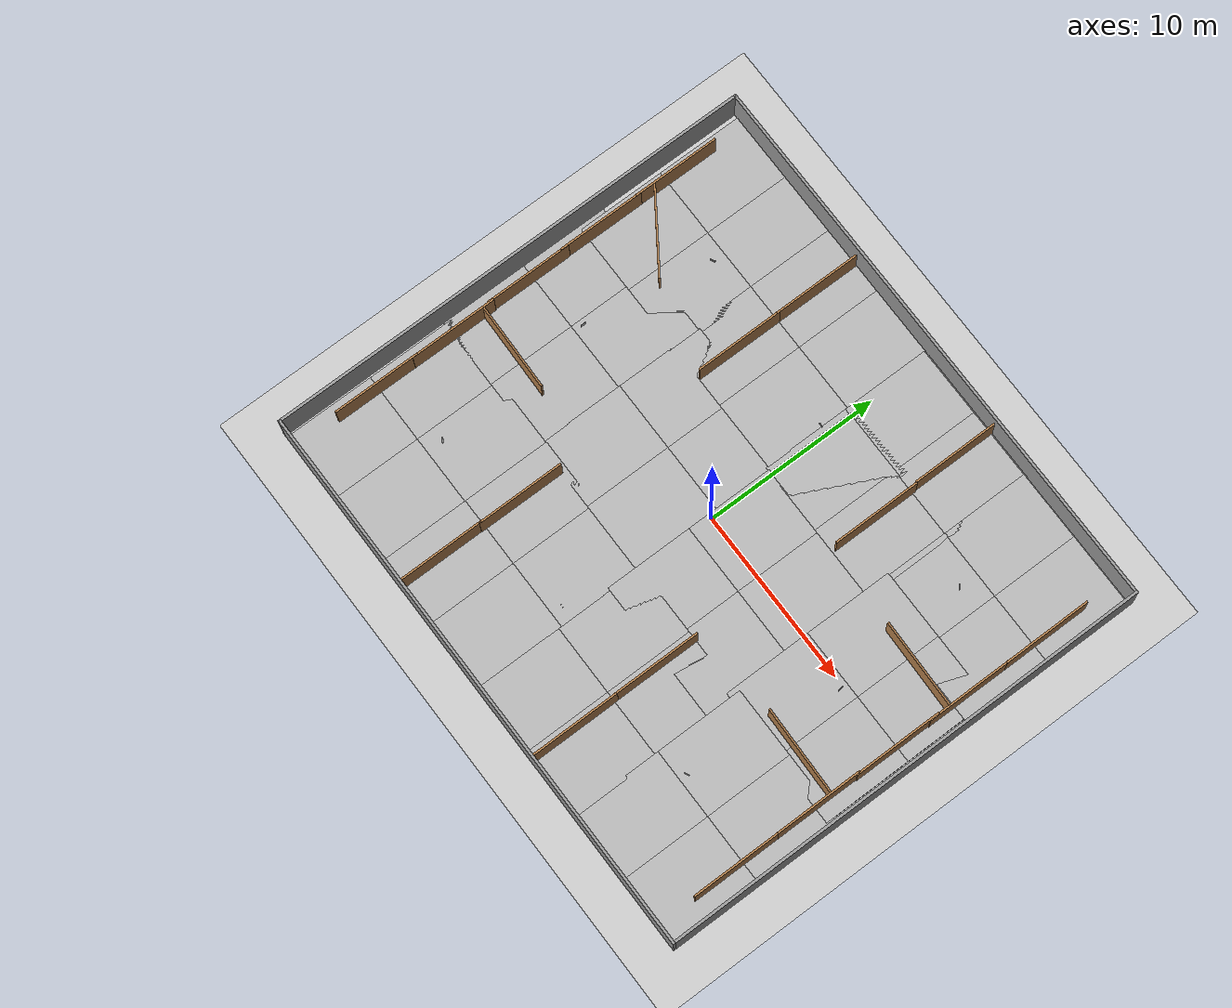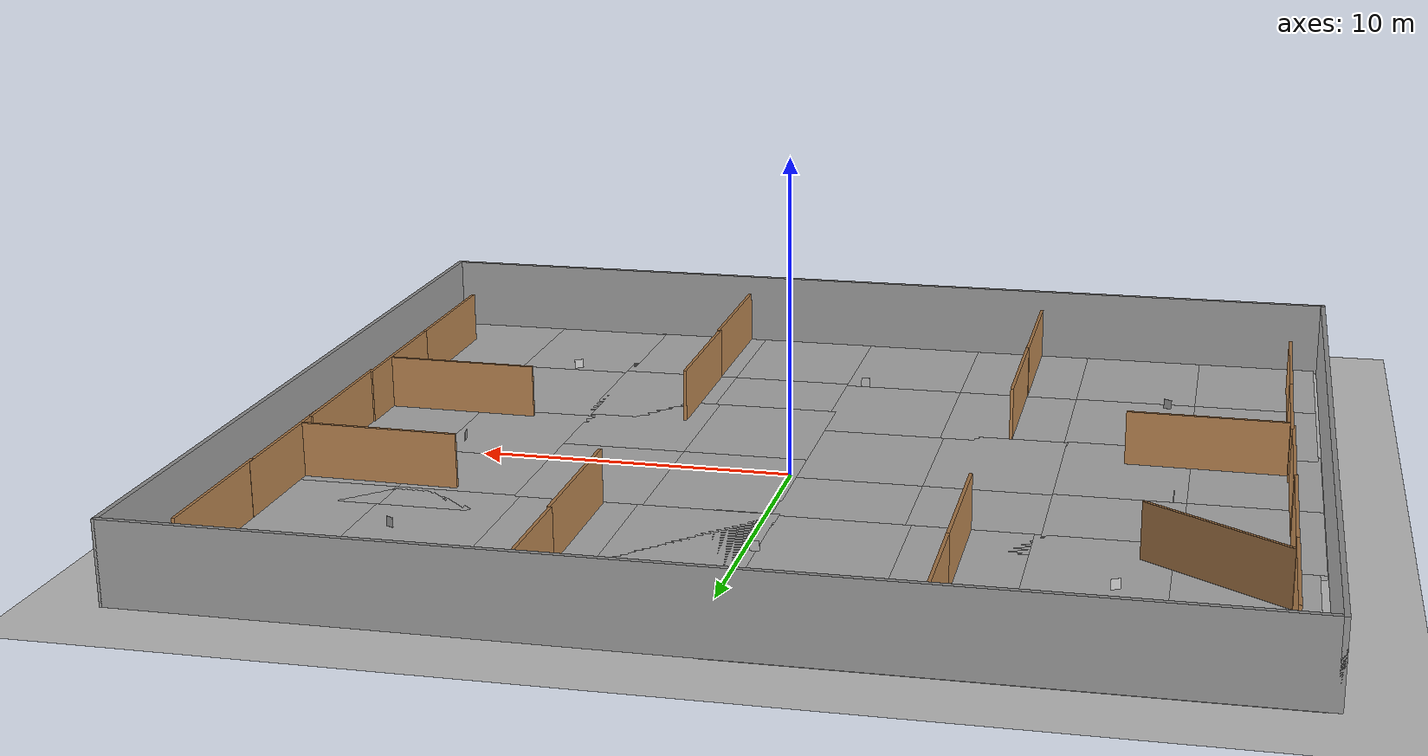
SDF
<sdf version="1.7">
 <world name="obstacles_world">
  <light name="sun" type="directional">
   <pose>0 0 10 0 -0 0</pose>
   <diffuse>0.8 0.8 0.8 1</diffuse>
   <specular>0.2 0.2 0.2 1</specular>
   <attenuation>
    <range>1000</range>
    <constant>0.9</constant>
    <linear>0.01</linear>
    <quadratic>0.001</quadratic>
   </attenuation>
   <direction>-0.5 0.1 -0.9</direction>
   <spot><inner_angle>0</inner_angle><outer_angle>0</outer_angle><falloff>0</falloff></spot>
  </light>
  <model name="ground_plane">
   <static>1</static>
   <link name="link">
    <collision name="collision">
     <geometry><plane><normal>0 0 1</normal><size>100 100</size></plane></geometry>
     <surface>
      <contact><collide_bitmask>65535</collide_bitmask></contact>
      <friction><ode><mu>100</mu><mu2>50</mu2></ode></friction>
     </surface>
    </collision>
    <visual name="visual">
     <cast_shadows>0</cast_shadows>
     <geometry><plane><normal>0 0 1</normal><size>100 100</size></plane></geometry>
     <material>
      <script><uri>file://media/materials/scripts/gazebo.material</uri><name>Gazebo/Grey</name></script>
     </material>
    </visual>
   </link>
  </model>
  <model name="obstacles">
   <pose>-0.2136 -0.241046 0 0 -0 0</pose>
   <link name="Wall_0">
    <collision name="Wall_0_Collision">
     <geometry><box><size>28.25 0.15 2.5</size></box></geometry>
     <pose>0 0 1.25 0 -0 0</pose>
    </collision>
    <visual name="Wall_0_Visual">
     <pose>0 0 1.25 0 -0 0</pose>
     <geometry><box><size>28.25 0.15 2.5</size></box></geometry>
     <material>
      <script><uri>file://media/materials/scripts/gazebo.material</uri><name>Gazebo/Grey</name></script>
      <ambient>1 1 1 1</ambient>
     </material>
     <meta><layer>0</layer></meta>
    </visual>
    <pose>-16.05 0 0 0 -0 1.5708</pose>
   </link>
   <link name="Wall_1">
    <collision name="Wall_1_Collision">
     <geometry><box><size>32.25 0.15 2.5</size></box></geometry>
     <pose>0 0 1.25 0 -0 0</pose>
    </collision>
    <visual name="Wall_1_Visual">
     <pose>0 0 1.25 0 -0 0</pose>
     <geometry><box><size>32.25 0.15 2.5</size></box></geometry>
     <material>
      <script><uri>file://media/materials/scripts/gazebo.material</uri><name>Gazebo/Grey</name></script>
      <ambient>1 1 1 1</ambient>
     </material>
     <meta><layer>0</layer></meta>
    </visual>
    <pose>1e-06 14.05 0 0 -0 0</pose>
   </link>
   <link name="Wall_4">
    <collision name="Wall_4_Collision">
     <geometry><box><size>28.25 0.15 2.5</size></box></geometry>
     <pose>0 0 1.25 0 -0 0</pose>
    </collision>
    <visual name="Wall_4_Visual">
     <pose>0 0 1.25 0 -0 0</pose>
     <geometry><box><size>28.25 0.15 2.5</size></box></geometry>
     <material>
      <script><uri>file://media/materials/scripts/gazebo.material</uri><name>Gazebo/Grey</name></script>
      <ambient>1 1 1 1</ambient>
     </material>
     <meta><layer>0</layer></meta>
    </visual>
    <pose>16.05 0 0 0 -0 -1.5708</pose>
   </link>
   <link name="Wall_5">
    <collision name="Wall_5_Collision">
     <geometry><box><size>32.25 0.15 2.5</size></box></geometry>
     <pose>0 0 1.25 0 -0 0</pose>
    </collision>
    <visual name="Wall_5_Visual">
     <pose>0 0 1.25 0 -0 0</pose>
     <geometry><box><size>32.25 0.15 2.5</size></box></geometry>
     <material>
      <script><uri>file://media/materials/scripts/gazebo.material</uri><name>Gazebo/Grey</name></script>
      <ambient>1 1 1 1</ambient>
     </material>
     <meta><layer>0</layer></meta>
    </visual>
    <pose>1e-06 -14.05 0 0 -0 3.14159</pose>
   </link>
   <static>1</static>
  </model>
  <gravity>0 0 -9.8</gravity>
  <magnetic_field>6e-06 2.3e-05 -4.2e-05</magnetic_field>
  <atmosphere type="adiabatic"/>
  <physics type="ode">
   <max_step_size>0.001</max_step_size>
   <real_time_factor>1</real_time_factor>
   <real_time_update_rate>1000</real_time_update_rate>
  </physics>
  <scene><ambient>0.4 0.4 0.4 1</ambient><background>0.7 0.7 0.7 1</background><shadows>1</shadows></scene>
  <audio><device>default</device></audio>
  <spherical_coordinates>
   <surface_model>EARTH_WGS84</surface_model>
   <latitude_deg>0</latitude_deg>
   <longitude_deg>0</longitude_deg>
   <elevation>0</elevation>
   <heading_deg>0</heading_deg>
  </spherical_coordinates>
  <model name="mud_box">
   <static>1</static>
   <link name="link">
    <collision name="collision"><geometry><box><size>8 10 0.2</size></box></geometry></collision>
    <visual name="visual_1">
     <pose>-2 2.5 0 0 -0 0</pose>
     <cast_shadows>0</cast_shadows>
     <geometry><box><size>4 5 0.2</size></box></geometry>
     <material>
      <script>
       <uri>https://fuel.ignitionrobotics.org/1.0/openrobotics/models/mud box/3/files/materials/scripts</uri>
       <uri>https://fuel.ignitionrobotics.org/1.0/openrobotics/models/mud box/3/files/materials/textures</uri>
       <name>vrc/mud</name>
      </script>
     </material>
    </visual>
    <visual name="visual_2">
     <pose>2 2.5 0 0 -0 0</pose>
     <cast_shadows>0</cast_shadows>
     <geometry><box><size>4 5 0.2</size></box></geometry>
     <material>
      <script>
       <uri>https://fuel.ignitionrobotics.org/1.0/openrobotics/models/mud box/3/files/materials/scripts</uri>
       <uri>https://fuel.ignitionrobotics.org/1.0/openrobotics/models/mud box/3/files/materials/textures</uri>
       <name>vrc/mud</name>
      </script>
     </material>
    </visual>
    <visual name="visual_3">
     <pose>2 -2.5 0 0 -0 0</pose>
     <cast_shadows>0</cast_shadows>
     <geometry><box><size>4 5 0.2</size></box></geometry>
     <material>
      <script>
       <uri>https://fuel.ignitionrobotics.org/1.0/openrobotics/models/mud box/3/files/materials/scripts</uri>
       <uri>https://fuel.ignitionrobotics.org/1.0/openrobotics/models/mud box/3/files/materials/textures</uri>
       <name>vrc/mud</name>
      </script>
     </material>
    </visual>
    <visual name="visual_4">
     <pose>-2 -2.5 0 0 -0 0</pose>
     <cast_shadows>0</cast_shadows>
     <geometry><box><size>4 5 0.2</size></box></geometry>
     <material>
      <script>
       <uri>https://fuel.ignitionrobotics.org/1.0/openrobotics/models/mud box/3/files/materials/scripts</uri>
       <uri>https://fuel.ignitionrobotics.org/1.0/openrobotics/models/mud box/3/files/materials/textures</uri>
       <name>vrc/mud</name>
      </script>
     </material>
    </visual>
   </link>
   <pose>-4.3861 8.81564 0 0 -0 0</pose>
  </model>
  <model name="mud_box_clone">
   <static>1</static>
   <link name="link">
    <collision name="collision"><geometry><box><size>8 10 0.2</size></box></geometry></collision>
    <visual name="visual_1">
     <pose>-2 2.5 0 0 -0 0</pose>
     <cast_shadows>0</cast_shadows>
     <geometry><box><size>4 5 0.2</size></box></geometry>
     <material>
      <script>
       <uri>https://fuel.ignitionrobotics.org/1.0/openrobotics/models/mud box/3/files/materials/scripts</uri>
       <uri>https://fuel.ignitionrobotics.org/1.0/openrobotics/models/mud box/3/files/materials/textures</uri>
       <name>vrc/mud</name>
      </script>
     </material>
    </visual>
    <visual name="visual_2">
     <pose>2 2.5 0 0 -0 0</pose>
     <cast_shadows>0</cast_shadows>
     <geometry><box><size>4 5 0.2</size></box></geometry>
     <material>
      <script>
       <uri>https://fuel.ignitionrobotics.org/1.0/openrobotics/models/mud box/3/files/materials/scripts</uri>
       <uri>https://fuel.ignitionrobotics.org/1.0/openrobotics/models/mud box/3/files/materials/textures</uri>
       <name>vrc/mud</name>
      </script>
     </material>
    </visual>
    <visual name="visual_3">
     <pose>2 -2.5 0 0 -0 0</pose>
     <cast_shadows>0</cast_shadows>
     <geometry><box><size>4 5 0.2</size></box></geometry>
     <material>
      <script>
       <uri>https://fuel.ignitionrobotics.org/1.0/openrobotics/models/mud box/3/files/materials/scripts</uri>
       <uri>https://fuel.ignitionrobotics.org/1.0/openrobotics/models/mud box/3/files/materials/textures</uri>
       <name>vrc/mud</name>
      </script>
     </material>
    </visual>
    <visual name="visual_4">
     <pose>-2 -2.5 0 0 -0 0</pose>
     <cast_shadows>0</cast_shadows>
     <geometry><box><size>4 5 0.2</size></box></geometry>
     <material>
      <script>
       <uri>https://fuel.ignitionrobotics.org/1.0/openrobotics/models/mud box/3/files/materials/scripts</uri>
       <uri>https://fuel.ignitionrobotics.org/1.0/openrobotics/models/mud box/3/files/materials/textures</uri>
       <name>vrc/mud</name>
      </script>
     </material>
    </visual>
   </link>
   <pose>-11.9609 8.81729 0 0 -0 0</pose>
  </model>
  <model name="fence">
   <static>1</static>
   <link name="link">
    <pose>0 0 0.915 0 -0 0</pose>
    <collision name="collision"><geometry><box><size>0.1 5 1.83</size></box></geometry></collision>
    <visual name="visual">
     <cast_shadows>0</cast_shadows>
     <geometry><box><size>0.1 5 1.83</size></box></geometry>
     <material>
      <script>
       <uri>https://fuel.ignitionrobotics.org/1.0/athackst/models/fence/2/files/materials/scripts</uri>
       <uri>https://fuel.ignitionrobotics.org/1.0/athackst/models/fence/2/files/materials/textures</uri>
       <name>Fence/WoodBoarding</name>
      </script>
     </material>
    </visual>
   </link>
   <pose>14.6045 -9.62209 0 0 -0 0</pose>
  </model>
  <model name="fence_clone">
   <static>1</static>
   <link name="link">
    <pose>0 0 0.915 0 -0 0</pose>
    <collision name="collision"><geometry><box><size>0.1 5 1.83</size></box></geometry></collision>
    <visual name="visual">
     <cast_shadows>0</cast_shadows>
     <geometry><box><size>0.1 5 1.83</size></box></geometry>
     <material>
      <script>
       <uri>https://fuel.ignitionrobotics.org/1.0/athackst/models/fence/2/files/materials/scripts</uri>
       <uri>https://fuel.ignitionrobotics.org/1.0/athackst/models/fence/2/files/materials/textures</uri>
       <name>Fence/WoodBoarding</name>
      </script>
     </material>
    </visual>
   </link>
   <pose>14.6018 -4.62397 0 0 -0 0</pose>
  </model>
  <model name="fence_clone_0">
   <static>1</static>
   <link name="link">
    <pose>0 0 0.915 0 -0 0</pose>
    <collision name="collision"><geometry><box><size>0.1 5 1.83</size></box></geometry></collision>
    <visual name="visual">
     <cast_shadows>0</cast_shadows>
     <geometry><box><size>0.1 5 1.83</size></box></geometry>
     <material>
      <script>
       <uri>https://fuel.ignitionrobotics.org/1.0/athackst/models/fence/2/files/materials/scripts</uri>
       <uri>https://fuel.ignitionrobotics.org/1.0/athackst/models/fence/2/files/materials/textures</uri>
       <name>Fence/WoodBoarding</name>
      </script>
     </material>
    </visual>
   </link>
   <pose>14.6508 0.141069 0 0 -0 0</pose>
  </model>
  <model name="fence_clone_1">
   <static>1</static>
   <link name="link">
    <pose>0 0 0.915 0 -0 0</pose>
    <collision name="collision"><geometry><box><size>0.1 5 1.83</size></box></geometry></collision>
    <visual name="visual">
     <cast_shadows>0</cast_shadows>
     <geometry><box><size>0.1 5 1.83</size></box></geometry>
     <material>
      <script>
       <uri>https://fuel.ignitionrobotics.org/1.0/athackst/models/fence/2/files/materials/scripts</uri>
       <uri>https://fuel.ignitionrobotics.org/1.0/athackst/models/fence/2/files/materials/textures</uri>
       <name>Fence/WoodBoarding</name>
      </script>
     </material>
    </visual>
   </link>
   <pose>14.6921 4.56473 -0.015225 0 -0 0</pose>
  </model>
  <model name="fence_clone_2">
   <static>1</static>
   <link name="link">
    <pose>0 0 0.915 0 -0 0</pose>
    <collision name="collision"><geometry><box><size>0.1 5 1.83</size></box></geometry></collision>
    <visual name="visual">
     <cast_shadows>0</cast_shadows>
     <geometry><box><size>0.1 5 1.83</size></box></geometry>
     <material>
      <script>
       <uri>https://fuel.ignitionrobotics.org/1.0/athackst/models/fence/2/files/materials/scripts</uri>
       <uri>https://fuel.ignitionrobotics.org/1.0/athackst/models/fence/2/files/materials/textures</uri>
       <name>Fence/WoodBoarding</name>
      </script>
     </material>
    </visual>
   </link>
   <pose>14.6978 9.2716 0 0 -0 0</pose>
  </model>
  <model name="fence_clone_3">
   <static>1</static>
   <link name="link">
    <pose>0 0 0.915 0 -0 0</pose>
    <collision name="collision"><geometry><box><size>0.1 5 1.83</size></box></geometry></collision>
    <visual name="visual">
     <cast_shadows>0</cast_shadows>
     <geometry><box><size>0.1 5 1.83</size></box></geometry>
     <material>
      <script>
       <uri>https://fuel.ignitionrobotics.org/1.0/athackst/models/fence/2/files/materials/scripts</uri>
       <uri>https://fuel.ignitionrobotics.org/1.0/athackst/models/fence/2/files/materials/textures</uri>
       <name>Fence/WoodBoarding</name>
      </script>
     </material>
    </visual>
   </link>
   <pose>-15.1685 -9.30903 0 0 -0 0</pose>
  </model>
  <model name="fence_clone_4">
   <static>1</static>
   <link name="link">
    <pose>0 0 0.915 0 -0 0</pose>
    <collision name="collision"><geometry><box><size>0.1 5 1.83</size></box></geometry></collision>
    <visual name="visual">
     <cast_shadows>0</cast_shadows>
     <geometry><box><size>0.1 5 1.83</size></box></geometry>
     <material>
      <script>
       <uri>https://fuel.ignitionrobotics.org/1.0/athackst/models/fence/2/files/materials/scripts</uri>
       <uri>https://fuel.ignitionrobotics.org/1.0/athackst/models/fence/2/files/materials/textures</uri>
       <name>Fence/WoodBoarding</name>
      </script>
     </material>
    </visual>
   </link>
   <pose>-15.1601 -4.63464 0 0 -0 0</pose>
  </model>
  <model name="fence_clone_5">
   <static>1</static>
   <link name="link">
    <pose>0 0 0.915 0 -0 0</pose>
    <collision name="collision"><geometry><box><size>0.1 5 1.83</size></box></geometry></collision>
    <visual name="visual">
     <cast_shadows>0</cast_shadows>
     <geometry><box><size>0.1 5 1.83</size></box></geometry>
     <material>
      <script>
       <uri>https://fuel.ignitionrobotics.org/1.0/athackst/models/fence/2/files/materials/scripts</uri>
       <uri>https://fuel.ignitionrobotics.org/1.0/athackst/models/fence/2/files/materials/textures</uri>
       <name>Fence/WoodBoarding</name>
      </script>
     </material>
    </visual>
   </link>
   <pose>-15.2084 0.02719 -0.008637 0 -0 0</pose>
  </model>
  <model name="fence_clone_6">
   <static>1</static>
   <link name="link">
    <pose>0 0 0.915 0 -0 0</pose>
    <collision name="collision"><geometry><box><size>0.1 5 1.83</size></box></geometry></collision>
    <visual name="visual">
     <cast_shadows>0</cast_shadows>
     <geometry><box><size>0.1 5 1.83</size></box></geometry>
     <material>
      <script>
       <uri>https://fuel.ignitionrobotics.org/1.0/athackst/models/fence/2/files/materials/scripts</uri>
       <uri>https://fuel.ignitionrobotics.org/1.0/athackst/models/fence/2/files/materials/textures</uri>
       <name>Fence/WoodBoarding</name>
      </script>
     </material>
    </visual>
   </link>
   <pose>-15.233 4.57812 0 0 -0 0</pose>
  </model>
  <model name="fence_clone_7">
   <static>1</static>
   <link name="link">
    <pose>0 0 0.915 0 -0 0</pose>
    <collision name="collision"><geometry><box><size>0.1 5 1.83</size></box></geometry></collision>
    <visual name="visual">
     <cast_shadows>0</cast_shadows>
     <geometry><box><size>0.1 5 1.83</size></box></geometry>
     <material>
      <script>
       <uri>https://fuel.ignitionrobotics.org/1.0/athackst/models/fence/2/files/materials/scripts</uri>
       <uri>https://fuel.ignitionrobotics.org/1.0/athackst/models/fence/2/files/materials/textures</uri>
       <name>Fence/WoodBoarding</name>
      </script>
     </material>
    </visual>
   </link>
   <pose>-15.2433 9.27953 0 0 -0 0</pose>
  </model>
  <model name="fence_clone_5_clone">
   <static>1</static>
   <link name="link">
    <pose>0 0 0.915 0 -0 0</pose>
    <collision name="collision"><geometry><box><size>0.1 5 1.83</size></box></geometry></collision>
    <visual name="visual">
     <cast_shadows>0</cast_shadows>
     <geometry><box><size>0.1 5 1.83</size></box></geometry>
     <material>
      <script>
       <uri>https://fuel.ignitionrobotics.org/1.0/athackst/models/fence/2/files/materials/scripts</uri>
       <uri>https://fuel.ignitionrobotics.org/1.0/athackst/models/fence/2/files/materials/textures</uri>
       <name>Fence/WoodBoarding</name>
      </script>
     </material>
    </visual>
   </link>
   <pose>-6.36057 -11.7862 -0.008637 0 -0 0</pose>
  </model>
  <model name="fence_clone_5_clone_0">
   <static>1</static>
   <link name="link">
    <pose>0 0 0.915 0 -0 0</pose>
    <collision name="collision"><geometry><box><size>0.1 5 1.83</size></box></geometry></collision>
    <visual name="visual">
     <cast_shadows>0</cast_shadows>
     <geometry><box><size>0.1 5 1.83</size></box></geometry>
     <material>
      <script>
       <uri>https://fuel.ignitionrobotics.org/1.0/athackst/models/fence/2/files/materials/scripts</uri>
       <uri>https://fuel.ignitionrobotics.org/1.0/athackst/models/fence/2/files/materials/textures</uri>
       <name>Fence/WoodBoarding</name>
      </script>
     </material>
    </visual>
   </link>
   <pose>4.49491 -11.6794 0.028206 0 -0 0</pose>
  </model>
  <model name="fence_clone_5_clone_1">
   <static>1</static>
   <link name="link">
    <pose>0 0 0.915 0 -0 0</pose>
    <collision name="collision"><geometry><box><size>0.1 5 1.83</size></box></geometry></collision>
    <visual name="visual">
     <cast_shadows>0</cast_shadows>
     <geometry><box><size>0.1 5 1.83</size></box></geometry>
     <material>
      <script>
       <uri>https://fuel.ignitionrobotics.org/1.0/athackst/models/fence/2/files/materials/scripts</uri>
       <uri>https://fuel.ignitionrobotics.org/1.0/athackst/models/fence/2/files/materials/textures</uri>
       <name>Fence/WoodBoarding</name>
      </script>
     </material>
    </visual>
   </link>
   <pose>4.92743 11.3344 -0.008637 0 -0 0</pose>
  </model>
  <model name="fence_clone_5_clone_2">
   <static>1</static>
   <link name="link">
    <pose>0 0 0.915 0 -0 0</pose>
    <collision name="collision"><geometry><box><size>0.1 5 1.83</size></box></geometry></collision>
    <visual name="visual">
     <cast_shadows>0</cast_shadows>
     <geometry><box><size>0.1 5 1.83</size></box></geometry>
     <material>
      <script>
       <uri>https://fuel.ignitionrobotics.org/1.0/athackst/models/fence/2/files/materials/scripts</uri>
       <uri>https://fuel.ignitionrobotics.org/1.0/athackst/models/fence/2/files/materials/textures</uri>
       <name>Fence/WoodBoarding</name>
      </script>
     </material>
    </visual>
   </link>
   <pose>-6.08248 11.1721 0.001351 0 -0 0</pose>
  </model>
  <model name="fence_clone_5_clone_3">
   <static>1</static>
   <link name="link">
    <pose>0 0 0.915 0 -0 0</pose>
    <collision name="collision"><geometry><box><size>0.1 5 1.83</size></box></geometry></collision>
    <visual name="visual">
     <cast_shadows>0</cast_shadows>
     <geometry><box><size>0.1 5 1.83</size></box></geometry>
     <material>
      <script>
       <uri>https://fuel.ignitionrobotics.org/1.0/athackst/models/fence/2/files/materials/scripts</uri>
       <uri>https://fuel.ignitionrobotics.org/1.0/athackst/models/fence/2/files/materials/textures</uri>
       <name>Fence/WoodBoarding</name>
      </script>
     </material>
    </visual>
   </link>
   <pose>-13.1332 6.51433 -0.008637 0 0 -2.16672</pose>
  </model>
  <model name="fence_clone_5_clone_4">
   <static>1</static>
   <link name="link">
    <pose>0 0 0.915 0 -0 0</pose>
    <collision name="collision"><geometry><box><size>0.1 5 1.83</size></box></geometry></collision>
    <visual name="visual">
     <cast_shadows>0</cast_shadows>
     <geometry><box><size>0.1 5 1.83</size></box></geometry>
     <material>
      <script>
       <uri>https://fuel.ignitionrobotics.org/1.0/athackst/models/fence/2/files/materials/scripts</uri>
       <uri>https://fuel.ignitionrobotics.org/1.0/athackst/models/fence/2/files/materials/textures</uri>
       <name>Fence/WoodBoarding</name>
      </script>
     </material>
    </visual>
   </link>
   <pose>-6.07978 6.32089 -0.008637 0 -0 0</pose>
  </model>
  <model name="fence_clone_5_clone_5">
   <static>1</static>
   <link name="link">
    <pose>0 0 0.915 0 -0 0</pose>
    <collision name="collision"><geometry><box><size>0.1 5 1.83</size></box></geometry></collision>
    <visual name="visual">
     <cast_shadows>0</cast_shadows>
     <geometry><box><size>0.1 5 1.83</size></box></geometry>
     <material>
      <script>
       <uri>https://fuel.ignitionrobotics.org/1.0/athackst/models/fence/2/files/materials/scripts</uri>
       <uri>https://fuel.ignitionrobotics.org/1.0/athackst/models/fence/2/files/materials/textures</uri>
       <name>Fence/WoodBoarding</name>
      </script>
     </material>
    </visual>
   </link>
   <pose>4.97932 6.34121 -0.008637 0 -0 0</pose>
  </model>
  <model name="fence_clone_5_clone_6">
   <static>1</static>
   <link name="link">
    <pose>0 0 0.915 0 -0 0</pose>
    <collision name="collision"><geometry><box><size>0.1 5 1.83</size></box></geometry></collision>
    <visual name="visual">
     <cast_shadows>0</cast_shadows>
     <geometry><box><size>0.1 5 1.83</size></box></geometry>
     <material>
      <script>
       <uri>https://fuel.ignitionrobotics.org/1.0/athackst/models/fence/2/files/materials/scripts</uri>
       <uri>https://fuel.ignitionrobotics.org/1.0/athackst/models/fence/2/files/materials/textures</uri>
       <name>Fence/WoodBoarding</name>
      </script>
     </material>
    </visual>
   </link>
   <pose>4.47699 -6.78303 -0.008637 0 -0 0</pose>
  </model>
  <model name="fence_clone_5_clone_3_clone">
   <static>1</static>
   <link name="link">
    <pose>0 0 0.915 0 -0 0</pose>
    <collision name="collision"><geometry><box><size>0.1 5 1.83</size></box></geometry></collision>
    <visual name="visual">
     <cast_shadows>0</cast_shadows>
     <geometry><box><size>0.1 5 1.83</size></box></geometry>
     <material>
      <script>
       <uri>https://fuel.ignitionrobotics.org/1.0/athackst/models/fence/2/files/materials/scripts</uri>
       <uri>https://fuel.ignitionrobotics.org/1.0/athackst/models/fence/2/files/materials/textures</uri>
       <name>Fence/WoodBoarding</name>
      </script>
     </material>
    </visual>
   </link>
   <pose>-6.34492 -6.99433 -0.008637 0 -0 0</pose>
  </model>
  <model name="fence_clone_5_clone_3_clone_0">
   <static>1</static>
   <link name="link">
    <pose>0 0 0.915 0 -0 0</pose>
    <collision name="collision"><geometry><box><size>0.1 5 1.83</size></box></geometry></collision>
    <visual name="visual">
     <cast_shadows>0</cast_shadows>
     <geometry><box><size>0.1 5 1.83</size></box></geometry>
     <material>
      <script>
       <uri>https://fuel.ignitionrobotics.org/1.0/athackst/models/fence/2/files/materials/scripts</uri>
       <uri>https://fuel.ignitionrobotics.org/1.0/athackst/models/fence/2/files/materials/textures</uri>
       <name>Fence/WoodBoarding</name>
      </script>
     </material>
    </visual>
   </link>
   <pose>12.1588 3.35184 -0.008637 0 0 -1.59485</pose>
  </model>
  <model name="fence_clone_5_clone_3_clone_0_clone">
   <static>1</static>
   <link name="link">
    <pose>0 0 0.915 0 -0 0</pose>
    <collision name="collision"><geometry><box><size>0.1 5 1.83</size></box></geometry></collision>
    <visual name="visual">
     <cast_shadows>0</cast_shadows>
     <geometry><box><size>0.1 5 1.83</size></box></geometry>
     <material>
      <script>
       <uri>https://fuel.ignitionrobotics.org/1.0/athackst/models/fence/2/files/materials/scripts</uri>
       <uri>https://fuel.ignitionrobotics.org/1.0/athackst/models/fence/2/files/materials/textures</uri>
       <name>Fence/WoodBoarding</name>
      </script>
     </material>
    </visual>
   </link>
   <pose>-12.6064 -2.83316 -0.008637 0 0 -1.59485</pose>
  </model>
  <model name="fence_clone_5_clone_3_clone_0_clone_0">
   <static>1</static>
   <link name="link">
    <pose>0 0 0.915 0 -0 0</pose>
    <collision name="collision"><geometry><box><size>0.1 5 1.83</size></box></geometry></collision>
    <visual name="visual">
     <cast_shadows>0</cast_shadows>
     <geometry><box><size>0.1 5 1.83</size></box></geometry>
     <material>
      <script>
       <uri>https://fuel.ignitionrobotics.org/1.0/athackst/models/fence/2/files/materials/scripts</uri>
       <uri>https://fuel.ignitionrobotics.org/1.0/athackst/models/fence/2/files/materials/textures</uri>
       <name>Fence/WoodBoarding</name>
      </script>
     </material>
    </visual>
   </link>
   <pose>12.0651 -3.82847 -0.008637 0 0 -1.59485</pose>
  </model>
  <model name="mud_box_clone_0_clone">
   <static>1</static>
   <link name="link">
    <collision name="collision"><geometry><box><size>8 10 0.2</size></box></geometry></collision>
    <visual name="visual_1">
     <pose>-2 2.5 0 0 -0 0</pose>
     <cast_shadows>0</cast_shadows>
     <geometry><box><size>4 5 0.2</size></box></geometry>
     <material>
      <script>
       <uri>https://fuel.ignitionrobotics.org/1.0/openrobotics/models/mud box/3/files/materials/scripts</uri>
       <uri>https://fuel.ignitionrobotics.org/1.0/openrobotics/models/mud box/3/files/materials/textures</uri>
       <name>vrc/mud</name>
      </script>
     </material>
    </visual>
    <visual name="visual_2">
     <pose>2 2.5 0 0 -0 0</pose>
     <cast_shadows>0</cast_shadows>
     <geometry><box><size>4 5 0.2</size></box></geometry>
     <material>
      <script>
       <uri>https://fuel.ignitionrobotics.org/1.0/openrobotics/models/mud box/3/files/materials/scripts</uri>
       <uri>https://fuel.ignitionrobotics.org/1.0/openrobotics/models/mud box/3/files/materials/textures</uri>
       <name>vrc/mud</name>
      </script>
     </material>
    </visual>
    <visual name="visual_3">
     <pose>2 -2.5 0 0 -0 0</pose>
     <cast_shadows>0</cast_shadows>
     <geometry><box><size>4 5 0.2</size></box></geometry>
     <material>
      <script>
       <uri>https://fuel.ignitionrobotics.org/1.0/openrobotics/models/mud box/3/files/materials/scripts</uri>
       <uri>https://fuel.ignitionrobotics.org/1.0/openrobotics/models/mud box/3/files/materials/textures</uri>
       <name>vrc/mud</name>
      </script>
     </material>
    </visual>
    <visual name="visual_4">
     <pose>-2 -2.5 0 0 -0 0</pose>
     <cast_shadows>0</cast_shadows>
     <geometry><box><size>4 5 0.2</size></box></geometry>
     <material>
      <script>
       <uri>https://fuel.ignitionrobotics.org/1.0/openrobotics/models/mud box/3/files/materials/scripts</uri>
       <uri>https://fuel.ignitionrobotics.org/1.0/openrobotics/models/mud box/3/files/materials/textures</uri>
       <name>vrc/mud</name>
      </script>
     </material>
    </visual>
   </link>
   <pose>3.87827 8.73356 0 0 -0 0</pose>
  </model>
  <model name="mud_box_clone_0_clone_0">
   <static>1</static>
   <link name="link">
    <collision name="collision"><geometry><box><size>8 10 0.2</size></box></geometry></collision>
    <visual name="visual_1">
     <pose>-2 2.5 0 0 -0 0</pose>
     <cast_shadows>0</cast_shadows>
     <geometry><box><size>4 5 0.2</size></box></geometry>
     <material>
      <script>
       <uri>https://fuel.ignitionrobotics.org/1.0/openrobotics/models/mud box/3/files/materials/scripts</uri>
       <uri>https://fuel.ignitionrobotics.org/1.0/openrobotics/models/mud box/3/files/materials/textures</uri>
       <name>vrc/mud</name>
      </script>
     </material>
    </visual>
    <visual name="visual_2">
     <pose>2 2.5 0 0 -0 0</pose>
     <cast_shadows>0</cast_shadows>
     <geometry><box><size>4 5 0.2</size></box></geometry>
     <material>
      <script>
       <uri>https://fuel.ignitionrobotics.org/1.0/openrobotics/models/mud box/3/files/materials/scripts</uri>
       <uri>https://fuel.ignitionrobotics.org/1.0/openrobotics/models/mud box/3/files/materials/textures</uri>
       <name>vrc/mud</name>
      </script>
     </material>
    </visual>
    <visual name="visual_3">
     <pose>2 -2.5 0 0 -0 0</pose>
     <cast_shadows>0</cast_shadows>
     <geometry><box><size>4 5 0.2</size></box></geometry>
     <material>
      <script>
       <uri>https://fuel.ignitionrobotics.org/1.0/openrobotics/models/mud box/3/files/materials/scripts</uri>
       <uri>https://fuel.ignitionrobotics.org/1.0/openrobotics/models/mud box/3/files/materials/textures</uri>
       <name>vrc/mud</name>
      </script>
     </material>
    </visual>
    <visual name="visual_4">
     <pose>-2 -2.5 0 0 -0 0</pose>
     <cast_shadows>0</cast_shadows>
     <geometry><box><size>4 5 0.2</size></box></geometry>
     <material>
      <script>
       <uri>https://fuel.ignitionrobotics.org/1.0/openrobotics/models/mud box/3/files/materials/scripts</uri>
       <uri>https://fuel.ignitionrobotics.org/1.0/openrobotics/models/mud box/3/files/materials/textures</uri>
       <name>vrc/mud</name>
      </script>
     </material>
    </visual>
   </link>
   <pose>11.5445 8.69509 0 0 0 -0.000916</pose>
  </model>
  <model name="mud_box_clone_0_clone_1">
   <static>1</static>
   <link name="link">
    <collision name="collision"><geometry><box><size>8 10 0.2</size></box></geometry></collision>
    <visual name="visual_1">
     <pose>-2 2.5 0 0 -0 0</pose>
     <cast_shadows>0</cast_shadows>
     <geometry><box><size>4 5 0.2</size></box></geometry>
     <material>
      <script>
       <uri>https://fuel.ignitionrobotics.org/1.0/openrobotics/models/mud box/3/files/materials/scripts</uri>
       <uri>https://fuel.ignitionrobotics.org/1.0/openrobotics/models/mud box/3/files/materials/textures</uri>
       <name>vrc/mud</name>
      </script>
     </material>
    </visual>
    <visual name="visual_2">
     <pose>2 2.5 0 0 -0 0</pose>
     <cast_shadows>0</cast_shadows>
     <geometry><box><size>4 5 0.2</size></box></geometry>
     <material>
      <script>
       <uri>https://fuel.ignitionrobotics.org/1.0/openrobotics/models/mud box/3/files/materials/scripts</uri>
       <uri>https://fuel.ignitionrobotics.org/1.0/openrobotics/models/mud box/3/files/materials/textures</uri>
       <name>vrc/mud</name>
      </script>
     </material>
    </visual>
    <visual name="visual_3">
     <pose>2 -2.5 0 0 -0 0</pose>
     <cast_shadows>0</cast_shadows>
     <geometry><box><size>4 5 0.2</size></box></geometry>
     <material>
      <script>
       <uri>https://fuel.ignitionrobotics.org/1.0/openrobotics/models/mud box/3/files/materials/scripts</uri>
       <uri>https://fuel.ignitionrobotics.org/1.0/openrobotics/models/mud box/3/files/materials/textures</uri>
       <name>vrc/mud</name>
      </script>
     </material>
    </visual>
    <visual name="visual_4">
     <pose>-2 -2.5 0 0 -0 0</pose>
     <cast_shadows>0</cast_shadows>
     <geometry><box><size>4 5 0.2</size></box></geometry>
     <material>
      <script>
       <uri>https://fuel.ignitionrobotics.org/1.0/openrobotics/models/mud box/3/files/materials/scripts</uri>
       <uri>https://fuel.ignitionrobotics.org/1.0/openrobotics/models/mud box/3/files/materials/textures</uri>
       <name>vrc/mud</name>
      </script>
     </material>
    </visual>
   </link>
   <pose>-12.1577 0.363059 0 0 -0 0</pose>
  </model>
  <model name="mud_box_clone_0_clone_2">
   <static>1</static>
   <link name="link">
    <collision name="collision"><geometry><box><size>8 10 0.2</size></box></geometry></collision>
    <visual name="visual_1">
     <pose>-2 2.5 0 0 -0 0</pose>
     <cast_shadows>0</cast_shadows>
     <geometry><box><size>4 5 0.2</size></box></geometry>
     <material>
      <script>
       <uri>https://fuel.ignitionrobotics.org/1.0/openrobotics/models/mud box/3/files/materials/scripts</uri>
       <uri>https://fuel.ignitionrobotics.org/1.0/openrobotics/models/mud box/3/files/materials/textures</uri>
       <name>vrc/mud</name>
      </script>
     </material>
    </visual>
    <visual name="visual_2">
     <pose>2 2.5 0 0 -0 0</pose>
     <cast_shadows>0</cast_shadows>
     <geometry><box><size>4 5 0.2</size></box></geometry>
     <material>
      <script>
       <uri>https://fuel.ignitionrobotics.org/1.0/openrobotics/models/mud box/3/files/materials/scripts</uri>
       <uri>https://fuel.ignitionrobotics.org/1.0/openrobotics/models/mud box/3/files/materials/textures</uri>
       <name>vrc/mud</name>
      </script>
     </material>
    </visual>
    <visual name="visual_3">
     <pose>2 -2.5 0 0 -0 0</pose>
     <cast_shadows>0</cast_shadows>
     <geometry><box><size>4 5 0.2</size></box></geometry>
     <material>
      <script>
       <uri>https://fuel.ignitionrobotics.org/1.0/openrobotics/models/mud box/3/files/materials/scripts</uri>
       <uri>https://fuel.ignitionrobotics.org/1.0/openrobotics/models/mud box/3/files/materials/textures</uri>
       <name>vrc/mud</name>
      </script>
     </material>
    </visual>
    <visual name="visual_4">
     <pose>-2 -2.5 0 0 -0 0</pose>
     <cast_shadows>0</cast_shadows>
     <geometry><box><size>4 5 0.2</size></box></geometry>
     <material>
      <script>
       <uri>https://fuel.ignitionrobotics.org/1.0/openrobotics/models/mud box/3/files/materials/scripts</uri>
       <uri>https://fuel.ignitionrobotics.org/1.0/openrobotics/models/mud box/3/files/materials/textures</uri>
       <name>vrc/mud</name>
      </script>
     </material>
    </visual>
   </link>
   <pose>-4.20444 0.449747 0 0 -0 0</pose>
  </model>
  <model name="mud_box_clone_0_clone_3">
   <static>1</static>
   <link name="link">
    <collision name="collision"><geometry><box><size>8 10 0.2</size></box></geometry></collision>
    <visual name="visual_1">
     <pose>-2 2.5 0 0 -0 0</pose>
     <cast_shadows>0</cast_shadows>
     <geometry><box><size>4 5 0.2</size></box></geometry>
     <material>
      <script>
       <uri>https://fuel.ignitionrobotics.org/1.0/openrobotics/models/mud box/3/files/materials/scripts</uri>
       <uri>https://fuel.ignitionrobotics.org/1.0/openrobotics/models/mud box/3/files/materials/textures</uri>
       <name>vrc/mud</name>
      </script>
     </material>
    </visual>
    <visual name="visual_2">
     <pose>2 2.5 0 0 -0 0</pose>
     <cast_shadows>0</cast_shadows>
     <geometry><box><size>4 5 0.2</size></box></geometry>
     <material>
      <script>
       <uri>https://fuel.ignitionrobotics.org/1.0/openrobotics/models/mud box/3/files/materials/scripts</uri>
       <uri>https://fuel.ignitionrobotics.org/1.0/openrobotics/models/mud box/3/files/materials/textures</uri>
       <name>vrc/mud</name>
      </script>
     </material>
    </visual>
    <visual name="visual_3">
     <pose>2 -2.5 0 0 -0 0</pose>
     <cast_shadows>0</cast_shadows>
     <geometry><box><size>4 5 0.2</size></box></geometry>
     <material>
      <script>
       <uri>https://fuel.ignitionrobotics.org/1.0/openrobotics/models/mud box/3/files/materials/scripts</uri>
       <uri>https://fuel.ignitionrobotics.org/1.0/openrobotics/models/mud box/3/files/materials/textures</uri>
       <name>vrc/mud</name>
      </script>
     </material>
    </visual>
    <visual name="visual_4">
     <pose>-2 -2.5 0 0 -0 0</pose>
     <cast_shadows>0</cast_shadows>
     <geometry><box><size>4 5 0.2</size></box></geometry>
     <material>
      <script>
       <uri>https://fuel.ignitionrobotics.org/1.0/openrobotics/models/mud box/3/files/materials/scripts</uri>
       <uri>https://fuel.ignitionrobotics.org/1.0/openrobotics/models/mud box/3/files/materials/textures</uri>
       <name>vrc/mud</name>
      </script>
     </material>
    </visual>
   </link>
   <pose>3.73293 -1.2184 0 0 -0 0</pose>
  </model>
  <model name="mud_box_clone_0_clone_5">
   <static>1</static>
   <link name="link">
    <collision name="collision"><geometry><box><size>8 10 0.2</size></box></geometry></collision>
    <visual name="visual_1">
     <pose>-2 2.5 0 0 -0 0</pose>
     <cast_shadows>0</cast_shadows>
     <geometry><box><size>4 5 0.2</size></box></geometry>
     <material>
      <script>
       <uri>https://fuel.ignitionrobotics.org/1.0/openrobotics/models/mud box/3/files/materials/scripts</uri>
       <uri>https://fuel.ignitionrobotics.org/1.0/openrobotics/models/mud box/3/files/materials/textures</uri>
       <name>vrc/mud</name>
      </script>
     </material>
    </visual>
    <visual name="visual_2">
     <pose>2 2.5 0 0 -0 0</pose>
     <cast_shadows>0</cast_shadows>
     <geometry><box><size>4 5 0.2</size></box></geometry>
     <material>
      <script>
       <uri>https://fuel.ignitionrobotics.org/1.0/openrobotics/models/mud box/3/files/materials/scripts</uri>
       <uri>https://fuel.ignitionrobotics.org/1.0/openrobotics/models/mud box/3/files/materials/textures</uri>
       <name>vrc/mud</name>
      </script>
     </material>
    </visual>
    <visual name="visual_3">
     <pose>2 -2.5 0 0 -0 0</pose>
     <cast_shadows>0</cast_shadows>
     <geometry><box><size>4 5 0.2</size></box></geometry>
     <material>
      <script>
       <uri>https://fuel.ignitionrobotics.org/1.0/openrobotics/models/mud box/3/files/materials/scripts</uri>
       <uri>https://fuel.ignitionrobotics.org/1.0/openrobotics/models/mud box/3/files/materials/textures</uri>
       <name>vrc/mud</name>
      </script>
     </material>
    </visual>
    <visual name="visual_4">
     <pose>-2 -2.5 0 0 -0 0</pose>
     <cast_shadows>0</cast_shadows>
     <geometry><box><size>4 5 0.2</size></box></geometry>
     <material>
      <script>
       <uri>https://fuel.ignitionrobotics.org/1.0/openrobotics/models/mud box/3/files/materials/scripts</uri>
       <uri>https://fuel.ignitionrobotics.org/1.0/openrobotics/models/mud box/3/files/materials/textures</uri>
       <name>vrc/mud</name>
      </script>
     </material>
    </visual>
   </link>
   <pose>11.7254 -9.14842 0 0 -0 0</pose>
  </model>
  <model name="mud_box_clone_0_clone_6">
   <static>1</static>
   <link name="link">
    <collision name="collision"><geometry><box><size>8 10 0.2</size></box></geometry></collision>
    <visual name="visual_1">
     <pose>-2 2.5 0 0 -0 0</pose>
     <cast_shadows>0</cast_shadows>
     <geometry><box><size>4 5 0.2</size></box></geometry>
     <material>
      <script>
       <uri>https://fuel.ignitionrobotics.org/1.0/openrobotics/models/mud box/3/files/materials/scripts</uri>
       <uri>https://fuel.ignitionrobotics.org/1.0/openrobotics/models/mud box/3/files/materials/textures</uri>
       <name>vrc/mud</name>
      </script>
     </material>
    </visual>
    <visual name="visual_2">
     <pose>2 2.5 0 0 -0 0</pose>
     <cast_shadows>0</cast_shadows>
     <geometry><box><size>4 5 0.2</size></box></geometry>
     <material>
      <script>
       <uri>https://fuel.ignitionrobotics.org/1.0/openrobotics/models/mud box/3/files/materials/scripts</uri>
       <uri>https://fuel.ignitionrobotics.org/1.0/openrobotics/models/mud box/3/files/materials/textures</uri>
       <name>vrc/mud</name>
      </script>
     </material>
    </visual>
    <visual name="visual_3">
     <pose>2 -2.5 0 0 -0 0</pose>
     <cast_shadows>0</cast_shadows>
     <geometry><box><size>4 5 0.2</size></box></geometry>
     <material>
      <script>
       <uri>https://fuel.ignitionrobotics.org/1.0/openrobotics/models/mud box/3/files/materials/scripts</uri>
       <uri>https://fuel.ignitionrobotics.org/1.0/openrobotics/models/mud box/3/files/materials/textures</uri>
       <name>vrc/mud</name>
      </script>
     </material>
    </visual>
    <visual name="visual_4">
     <pose>-2 -2.5 0 0 -0 0</pose>
     <cast_shadows>0</cast_shadows>
     <geometry><box><size>4 5 0.2</size></box></geometry>
     <material>
      <script>
       <uri>https://fuel.ignitionrobotics.org/1.0/openrobotics/models/mud box/3/files/materials/scripts</uri>
       <uri>https://fuel.ignitionrobotics.org/1.0/openrobotics/models/mud box/3/files/materials/textures</uri>
       <name>vrc/mud</name>
      </script>
     </material>
    </visual>
   </link>
   <pose>3.89971 -9.3538 0 0 -0 0</pose>
  </model>
  <model name="mud_box_clone_0_clone_7">
   <static>1</static>
   <link name="link">
    <collision name="collision"><geometry><box><size>8 10 0.2</size></box></geometry></collision>
    <visual name="visual_1">
     <pose>-2 2.5 0 0 -0 0</pose>
     <cast_shadows>0</cast_shadows>
     <geometry><box><size>4 5 0.2</size></box></geometry>
     <material>
      <script>
       <uri>https://fuel.ignitionrobotics.org/1.0/openrobotics/models/mud box/3/files/materials/scripts</uri>
       <uri>https://fuel.ignitionrobotics.org/1.0/openrobotics/models/mud box/3/files/materials/textures</uri>
       <name>vrc/mud</name>
      </script>
     </material>
    </visual>
    <visual name="visual_2">
     <pose>2 2.5 0 0 -0 0</pose>
     <cast_shadows>0</cast_shadows>
     <geometry><box><size>4 5 0.2</size></box></geometry>
     <material>
      <script>
       <uri>https://fuel.ignitionrobotics.org/1.0/openrobotics/models/mud box/3/files/materials/scripts</uri>
       <uri>https://fuel.ignitionrobotics.org/1.0/openrobotics/models/mud box/3/files/materials/textures</uri>
       <name>vrc/mud</name>
      </script>
     </material>
    </visual>
    <visual name="visual_3">
     <pose>2 -2.5 0 0 -0 0</pose>
     <cast_shadows>0</cast_shadows>
     <geometry><box><size>4 5 0.2</size></box></geometry>
     <material>
      <script>
       <uri>https://fuel.ignitionrobotics.org/1.0/openrobotics/models/mud box/3/files/materials/scripts</uri>
       <uri>https://fuel.ignitionrobotics.org/1.0/openrobotics/models/mud box/3/files/materials/textures</uri>
       <name>vrc/mud</name>
      </script>
     </material>
    </visual>
    <visual name="visual_4">
     <pose>-2 -2.5 0 0 -0 0</pose>
     <cast_shadows>0</cast_shadows>
     <geometry><box><size>4 5 0.2</size></box></geometry>
     <material>
      <script>
       <uri>https://fuel.ignitionrobotics.org/1.0/openrobotics/models/mud box/3/files/materials/scripts</uri>
       <uri>https://fuel.ignitionrobotics.org/1.0/openrobotics/models/mud box/3/files/materials/textures</uri>
       <name>vrc/mud</name>
      </script>
     </material>
    </visual>
   </link>
   <pose>-12.0797 -9.22897 0 0 -0 0</pose>
  </model>
  <model name="mud_box_clone_0_clone_8">
   <static>1</static>
   <link name="link">
    <collision name="collision"><geometry><box><size>8 10 0.2</size></box></geometry></collision>
    <visual name="visual_1">
     <pose>-2 2.5 0 0 -0 0</pose>
     <cast_shadows>0</cast_shadows>
     <geometry><box><size>4 5 0.2</size></box></geometry>
     <material>
      <script>
       <uri>https://fuel.ignitionrobotics.org/1.0/openrobotics/models/mud box/3/files/materials/scripts</uri>
       <uri>https://fuel.ignitionrobotics.org/1.0/openrobotics/models/mud box/3/files/materials/textures</uri>
       <name>vrc/mud</name>
      </script>
     </material>
    </visual>
    <visual name="visual_2">
     <pose>2 2.5 0 0 -0 0</pose>
     <cast_shadows>0</cast_shadows>
     <geometry><box><size>4 5 0.2</size></box></geometry>
     <material>
      <script>
       <uri>https://fuel.ignitionrobotics.org/1.0/openrobotics/models/mud box/3/files/materials/scripts</uri>
       <uri>https://fuel.ignitionrobotics.org/1.0/openrobotics/models/mud box/3/files/materials/textures</uri>
       <name>vrc/mud</name>
      </script>
     </material>
    </visual>
    <visual name="visual_3">
     <pose>2 -2.5 0 0 -0 0</pose>
     <cast_shadows>0</cast_shadows>
     <geometry><box><size>4 5 0.2</size></box></geometry>
     <material>
      <script>
       <uri>https://fuel.ignitionrobotics.org/1.0/openrobotics/models/mud box/3/files/materials/scripts</uri>
       <uri>https://fuel.ignitionrobotics.org/1.0/openrobotics/models/mud box/3/files/materials/textures</uri>
       <name>vrc/mud</name>
      </script>
     </material>
    </visual>
    <visual name="visual_4">
     <pose>-2 -2.5 0 0 -0 0</pose>
     <cast_shadows>0</cast_shadows>
     <geometry><box><size>4 5 0.2</size></box></geometry>
     <material>
      <script>
       <uri>https://fuel.ignitionrobotics.org/1.0/openrobotics/models/mud box/3/files/materials/scripts</uri>
       <uri>https://fuel.ignitionrobotics.org/1.0/openrobotics/models/mud box/3/files/materials/textures</uri>
       <name>vrc/mud</name>
      </script>
     </material>
    </visual>
   </link>
   <pose>-4.08424 -9.19334 0 0 -0 0</pose>
  </model>
  <model name="Apriltag36_11_00002">
   <link name="main">
    <pose>0 0 0.15 1.57 1.57 1.57</pose>
    <visual name="main_Visual">
     <geometry><box><size>0.3 0.3 0.01</size></box></geometry>
     <material>
      <script>
       <uri>model://Apriltag36_11_00002/materials/scripts</uri>
       <uri>model://Apriltag36_11_00002/materials/textures</uri>
       <name>Apriltag36_11_00002</name>
      </script>
     </material>
    </visual>
   </link>
   <static>1</static>
   <pose>-11.7789 0.852993 0.601487 -3.07203 -0.014702 -0.024463</pose>
  </model>
  <model name="Apriltag36_11_00003">
   <link name="main">
    <pose>0 0 0.15 1.57 1.57 1.57</pose>
    <visual name="main_Visual">
     <geometry><box><size>0.3 0.3 0.01</size></box></geometry>
     <material>
      <script>
       <uri>model://Apriltag36_11_00003/materials/scripts</uri>
       <uri>model://Apriltag36_11_00003/materials/textures</uri>
       <name>Apriltag36_11_00003</name>
      </script>
     </material>
    </visual>
   </link>
   <static>1</static>
   <pose>-10.5513 8.0552 0.334248 0.005646 -0.073481 2.06778</pose>
  </model>
  <model name="Apriltag36_11_00004">
   <link name="main">
    <pose>0 0 0.15 1.57 1.57 1.57</pose>
    <visual name="main_Visual">
     <geometry><box><size>0.3 0.3 0.01</size></box></geometry>
     <material>
      <script>
       <uri>model://Apriltag36_11_00004/materials/scripts</uri>
       <uri>model://Apriltag36_11_00004/materials/textures</uri>
       <name>Apriltag36_11_00004</name>
      </script>
     </material>
    </visual>
   </link>
   <static>1</static>
   <pose>-11.1913 -8.28352 0.263463 -0.038907 0.119691 -2.18555</pose>
  </model>
  <model name="mud_box_clone_0">
   <static>1</static>
   <link name="link">
    <collision name="collision"><geometry><box><size>8 10 0.2</size></box></geometry></collision>
    <visual name="visual_1">
     <pose>-2 2.5 0 0 -0 0</pose>
     <cast_shadows>0</cast_shadows>
     <geometry><box><size>4 5 0.2</size></box></geometry>
     <material>
      <script>
       <uri>https://fuel.ignitionrobotics.org/1.0/openrobotics/models/mud box/3/files/materials/scripts</uri>
       <uri>https://fuel.ignitionrobotics.org/1.0/openrobotics/models/mud box/3/files/materials/textures</uri>
       <name>vrc/mud</name>
      </script>
     </material>
    </visual>
    <visual name="visual_2">
     <pose>2 2.5 0 0 -0 0</pose>
     <cast_shadows>0</cast_shadows>
     <geometry><box><size>4 5 0.2</size></box></geometry>
     <material>
      <script>
       <uri>https://fuel.ignitionrobotics.org/1.0/openrobotics/models/mud box/3/files/materials/scripts</uri>
       <uri>https://fuel.ignitionrobotics.org/1.0/openrobotics/models/mud box/3/files/materials/textures</uri>
       <name>vrc/mud</name>
      </script>
     </material>
    </visual>
    <visual name="visual_3">
     <pose>2 -2.5 0 0 -0 0</pose>
     <cast_shadows>0</cast_shadows>
     <geometry><box><size>4 5 0.2</size></box></geometry>
     <material>
      <script>
       <uri>https://fuel.ignitionrobotics.org/1.0/openrobotics/models/mud box/3/files/materials/scripts</uri>
       <uri>https://fuel.ignitionrobotics.org/1.0/openrobotics/models/mud box/3/files/materials/textures</uri>
       <name>vrc/mud</name>
      </script>
     </material>
    </visual>
    <visual name="visual_4">
     <pose>-2 -2.5 0 0 -0 0</pose>
     <cast_shadows>0</cast_shadows>
     <geometry><box><size>4 5 0.2</size></box></geometry>
     <material>
      <script>
       <uri>https://fuel.ignitionrobotics.org/1.0/openrobotics/models/mud box/3/files/materials/scripts</uri>
       <uri>https://fuel.ignitionrobotics.org/1.0/openrobotics/models/mud box/3/files/materials/textures</uri>
       <name>vrc/mud</name>
      </script>
     </material>
    </visual>
   </link>
   <pose>3.56232 8.69131 0 0 -0 0</pose>
  </model>
  <model name="Apriltag36_11_00004_clone">
   <link name="main">
    <pose>0 0 0.15 1.57 1.57 1.57</pose>
    <visual name="main_Visual">
     <geometry><box><size>0.3 0.3 0.01</size></box></geometry>
     <material>
      <script>
       <uri>model://Apriltag36_11_00004/materials/scripts</uri>
       <uri>model://Apriltag36_11_00004/materials/textures</uri>
       <name>Apriltag36_11_00004</name>
      </script>
     </material>
    </visual>
   </link>
   <static>1</static>
   <pose>10.6862 -0.248873 0.651679 3.12701 0.054437 -2.99585</pose>
  </model>
  <model name="Apriltag36_11_00004_clone_0">
   <link name="main">
    <pose>0 0 0.15 1.57 1.57 1.57</pose>
    <visual name="main_Visual">
     <geometry><box><size>0.3 0.3 0.01</size></box></geometry>
     <material>
      <script>
       <uri>model://Apriltag36_11_00004/materials/scripts</uri>
       <uri>model://Apriltag36_11_00004/materials/textures</uri>
       <name>Apriltag36_11_00004</name>
      </script>
     </material>
    </visual>
   </link>
   <static>1</static>
   <pose>-0.435633 7.14693 0.590604 3.10332 0.03181 -1.61855</pose>
  </model>
  <model name="mud_box_clone_0_clone_5_clone">
   <static>1</static>
   <link name="link">
    <collision name="collision"><geometry><box><size>8 10 0.2</size></box></geometry></collision>
    <visual name="visual_1">
     <pose>-2 2.5 0 0 -0 0</pose>
     <cast_shadows>0</cast_shadows>
     <geometry><box><size>4 5 0.2</size></box></geometry>
     <material>
      <script>
       <uri>https://fuel.ignitionrobotics.org/1.0/openrobotics/models/mud box/3/files/materials/scripts</uri>
       <uri>https://fuel.ignitionrobotics.org/1.0/openrobotics/models/mud box/3/files/materials/textures</uri>
       <name>vrc/mud</name>
      </script>
     </material>
    </visual>
    <visual name="visual_2">
     <pose>2 2.5 0 0 -0 0</pose>
     <cast_shadows>0</cast_shadows>
     <geometry><box><size>4 5 0.2</size></box></geometry>
     <material>
      <script>
       <uri>https://fuel.ignitionrobotics.org/1.0/openrobotics/models/mud box/3/files/materials/scripts</uri>
       <uri>https://fuel.ignitionrobotics.org/1.0/openrobotics/models/mud box/3/files/materials/textures</uri>
       <name>vrc/mud</name>
      </script>
     </material>
    </visual>
    <visual name="visual_3">
     <pose>2 -2.5 0 0 -0 0</pose>
     <cast_shadows>0</cast_shadows>
     <geometry><box><size>4 5 0.2</size></box></geometry>
     <material>
      <script>
       <uri>https://fuel.ignitionrobotics.org/1.0/openrobotics/models/mud box/3/files/materials/scripts</uri>
       <uri>https://fuel.ignitionrobotics.org/1.0/openrobotics/models/mud box/3/files/materials/textures</uri>
       <name>vrc/mud</name>
      </script>
     </material>
    </visual>
    <visual name="visual_4">
     <pose>-2 -2.5 0 0 -0 0</pose>
     <cast_shadows>0</cast_shadows>
     <geometry><box><size>4 5 0.2</size></box></geometry>
     <material>
      <script>
       <uri>https://fuel.ignitionrobotics.org/1.0/openrobotics/models/mud box/3/files/materials/scripts</uri>
       <uri>https://fuel.ignitionrobotics.org/1.0/openrobotics/models/mud box/3/files/materials/textures</uri>
       <name>vrc/mud</name>
      </script>
     </material>
    </visual>
   </link>
   <pose>11.4597 0.240276 0 0 -0 0</pose>
  </model>
  <model name="Apriltag36_11_00003_clone">
   <link name="main">
    <pose>0 0 0.15 1.57 1.57 1.57</pose>
    <visual name="main_Visual">
     <geometry><box><size>0.3 0.3 0.01</size></box></geometry>
     <material>
      <script>
       <uri>model://Apriltag36_11_00003/materials/scripts</uri>
       <uri>model://Apriltag36_11_00003/materials/textures</uri>
       <name>Apriltag36_11_00003</name>
      </script>
     </material>
    </visual>
   </link>
   <static>1</static>
   <pose>9.51071 -8.74698 0.603163 -3.12949 -0.073481 2.06778</pose>
  </model>
  <model name="Apriltag36_11_00003_clone_0">
   <link name="main">
    <pose>0 0 0.15 1.57 1.57 1.57</pose>
    <visual name="main_Visual">
     <geometry><box><size>0.3 0.3 0.01</size></box></geometry>
     <material>
      <script>
       <uri>model://Apriltag36_11_00003/materials/scripts</uri>
       <uri>model://Apriltag36_11_00003/materials/textures</uri>
       <name>Apriltag36_11_00003</name>
      </script>
     </material>
    </visual>
   </link>
   <static>1</static>
   <pose>10.2061 7.53357 0.336379 0.068248 -0.027834 0.9604</pose>
  </model>
  <model name="Apriltag36_11_00002_clone">
   <link name="main">
    <pose>0 0 0.15 1.57 1.57 1.57</pose>
    <visual name="main_Visual">
     <geometry><box><size>0.3 0.3 0.01</size></box></geometry>
     <material>
      <script>
       <uri>model://Apriltag36_11_00002/materials/scripts</uri>
       <uri>model://Apriltag36_11_00002/materials/textures</uri>
       <name>Apriltag36_11_00002</name>
      </script>
     </material>
    </visual>
   </link>
   <static>1</static>
   <pose>-0.860337 -8.59822 0.604884 3.13042 -0.070215 1.49633</pose>
  </model>
 </world>
</sdf>
